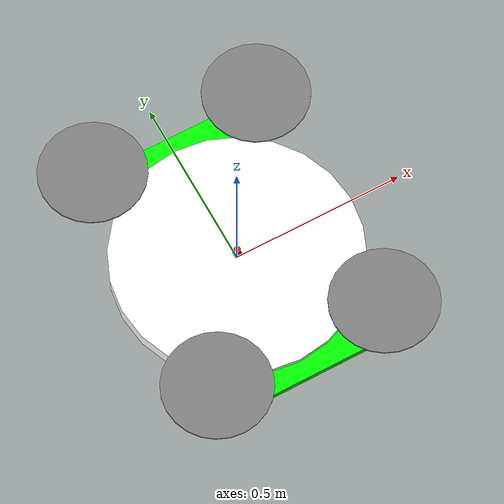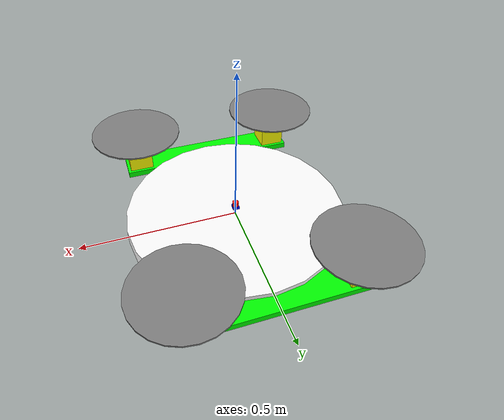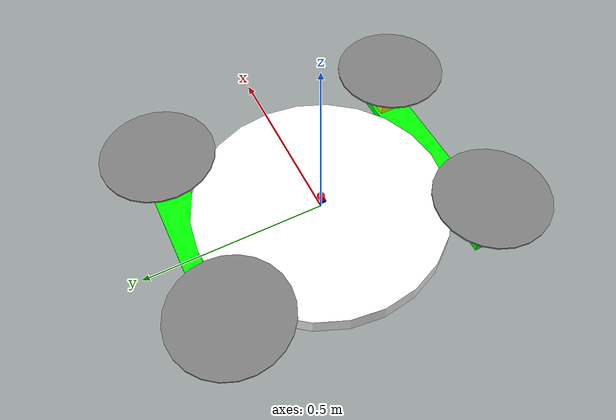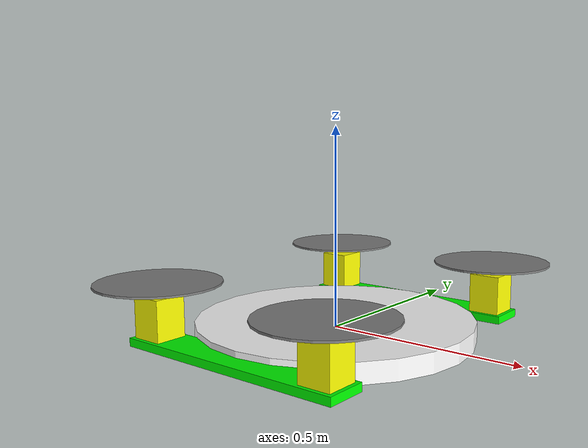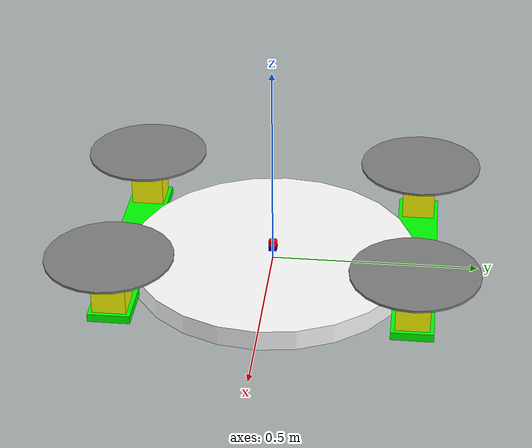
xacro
<?xml version="1.0"?>
<robot name="tilt_drone" xmlns:xacro="http://www.ros.org/wiki/xacro">

  <!-- Include all property and macro files -->
  <xacro:include filename="properties.xacro"/>
  <xacro:include filename="macros.xacro"/>
  <xacro:include filename="sensors.xacro"/>
  <xacro:include filename="gazebo.xacro"/>

  <!-- Main Body (Base Link) -->
  <link name="base_link">
    <visual>
      <origin xyz="0 0 0" rpy="0 0 0"/>
      <geometry>
        <cylinder radius="${body_radius}" length="${body_length}"/>
      </geometry>
      <material name="white"/>
    </visual>
    <collision>
      <origin xyz="0 0 0" rpy="0 0 0"/>
      <geometry>
        <cylinder radius="${body_radius}" length="${body_length}"/>
      </geometry>
    </collision>
    <inertial>
      <mass value="${body_mass}"/>
      <origin xyz="0 0 0" rpy="0 0 0"/>
      <inertia ixx="${body_ixx}" ixy="0" ixz="0" iyy="${body_iyy}" iyz="0" izz="${body_izz}"/>
    </inertial>
  </link>

  <!-- Left Wing Assembly -->
  <xacro:wing prefix="left" reflect="1"/>

  <!-- Right Wing Assembly -->
  <xacro:wing prefix="right" reflect="-1"/>

  <!-- Left Front Motor Assembly -->
  <xacro:motor_assembly prefix="left_front" wing_prefix="left" x_pos="${front_motor_x}"/>

  <!-- Left Rear Motor Assembly -->
  <xacro:motor_assembly prefix="left_rear" wing_prefix="left" x_pos="${rear_motor_x}"/>

  <!-- Right Front Motor Assembly -->
  <xacro:motor_assembly prefix="right_front" wing_prefix="right" x_pos="${front_motor_x}"/>

  <!-- Right Rear Motor Assembly -->
  <xacro:motor_assembly prefix="right_rear" wing_prefix="right" x_pos="${rear_motor_x}"/>

  <!-- Sensors -->
  <xacro:imu_sensor parent_link="base_link"/>
  <xacro:gps_sensor parent_link="base_link"/>
  <xacro:barometer_sensor parent_link="base_link"/>
  <xacro:magnetometer_sensor parent_link="imu_link"/>

</robot>

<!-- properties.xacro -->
<robot xmlns:xacro="http://www.ros.org/wiki/xacro">

  <!-- Main Body Properties -->
  <xacro:property name="body_radius" value="0.35"/>
  <xacro:property name="body_length" value="0.05"/>
  <xacro:property name="body_mass" value="2.0"/>
  <xacro:property name="body_ixx" value="0.1"/>
  <xacro:property name="body_iyy" value="0.1"/>
  <xacro:property name="body_izz" value="0.05"/>

  <!-- Wing Properties -->
  <xacro:property name="wing_length" value="0.6"/>
  <xacro:property name="wing_width" value="0.1"/>
  <xacro:property name="wing_height" value="0.02"/>
  <xacro:property name="wing_mass" value="0.5"/>
  <xacro:property name="wing_offset_y" value="0.35"/>
  <xacro:property name="wing_ixx" value="0.01"/>
  <xacro:property name="wing_iyy" value="0.05"/>
  <xacro:property name="wing_izz" value="0.05"/>

  <!-- Motor Properties -->
  <xacro:property name="motor_width" value="0.08"/>
  <xacro:property name="motor_depth" value="0.08"/>
  <xacro:property name="motor_height" value="0.1"/>
  <xacro:property name="motor_mass" value="0.3"/>
  <xacro:property name="motor_z_offset" value="0.06"/>
  <xacro:property name="motor_ixx" value="0.01"/>
  <xacro:property name="motor_iyy" value="0.01"/>
  <xacro:property name="motor_izz" value="0.01"/>

  <!-- Motor Positions -->
  <xacro:property name="front_motor_x" value="0.25"/>
  <xacro:property name="rear_motor_x" value="-0.25"/>

  <!-- Tilt Joint Properties -->
  <xacro:property name="tilt_limit_lower" value="-1.57"/>
  <xacro:property name="tilt_limit_upper" value="1.57"/>
  <xacro:property name="tilt_effort" value="10"/>
  <xacro:property name="tilt_velocity" value="2"/>

  <!-- Propeller Properties -->
  <xacro:property name="prop_radius" value="0.15"/>
  <xacro:property name="prop_thickness" value="0.005"/>
  <xacro:property name="prop_mass" value="0.05"/>
  <xacro:property name="prop_z_offset" value="0.08"/>
  <xacro:property name="prop_ixx" value="0.001"/>
  <xacro:property name="prop_iyy" value="0.001"/>
  <xacro:property name="prop_izz" value="0.001"/>

  <!-- Sensor Mounting Positions -->
  <xacro:property name="imu_x" value="0"/>
  <xacro:property name="imu_y" value="0"/>
  <xacro:property name="imu_z" value="0.03"/>

  <xacro:property name="gps_x" value="0"/>
  <xacro:property name="gps_y" value="0"/>
  <xacro:property name="gps_z" value="0.04"/>

  <!-- Material Definitions -->
  <material name="white">
    <color rgba="1 1 1 1"/>
  </material>

  <material name="green">
    <color rgba="0 1 0 1"/>
  </material>

  <material name="yellow">
    <color rgba="1 1 0 1"/>
  </material>

  <material name="gray">
    <color rgba="0.5 0.5 0.5 1"/>
  </material>

  <material name="red">
    <color rgba="1 0 0 1"/>
  </material>

  <material name="blue">
    <color rgba="0 0 1 1"/>
  </material>

</robot>

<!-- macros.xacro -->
<robot xmlns:xacro="http://www.ros.org/wiki/xacro">

  <!-- Wing Macro -->
  <xacro:macro name="wing" params="prefix reflect">
    <link name="${prefix}_wing">
      <visual>
        <origin xyz="0 0 0" rpy="0 0 0"/>
        <geometry>
          <box size="${wing_length} ${wing_width} ${wing_height}"/>
        </geometry>
        <material name="green">
          <color rgba="0 1 0 1"/>
        </material>
      </visual>
      <collision>
        <origin xyz="0 0 0" rpy="0 0 0"/>
        <geometry>
          <box size="${wing_length} ${wing_width} ${wing_height}"/>
        </geometry>
      </collision>
      <inertial>
        <mass value="${wing_mass}"/>
        <origin xyz="0 0 0" rpy="0 0 0"/>
        <inertia ixx="${wing_ixx}" ixy="0" ixz="0" iyy="${wing_iyy}" iyz="0" izz="${wing_izz}"/>
      </inertial>
    </link>

    <joint name="${prefix}_wing_joint" type="fixed">
      <parent link="base_link"/>
      <child link="${prefix}_wing"/>
      <origin xyz="0 ${reflect * wing_offset_y} 0" rpy="0 0 0"/>
    </joint>
  </xacro:macro>

  <!-- Tilt Motor Macro -->
  <xacro:macro name="tilt_motor" params="prefix wing_prefix x_pos">
    <link name="${prefix}_motor">
      <visual>
        <origin xyz="0 0 0" rpy="0 0 0"/>
        <geometry>
          <box size="${motor_width} ${motor_depth} ${motor_height}"/>
        </geometry>
        <material name="yellow">
          <color rgba="1 1 0 1"/>
        </material>
      </visual>
      <collision>
        <origin xyz="0 0 0" rpy="0 0 0"/>
        <geometry>
          <box size="${motor_width} ${motor_depth} ${motor_height}"/>
        </geometry>
      </collision>
      <inertial>
        <mass value="${motor_mass}"/>
        <origin xyz="0 0 0" rpy="0 0 0"/>
        <inertia ixx="${motor_ixx}" ixy="0" ixz="0" iyy="${motor_iyy}" iyz="0" izz="${motor_izz}"/>
      </inertial>
    </link>

    <joint name="${prefix}_tilt_joint" type="revolute">
      <parent link="${wing_prefix}_wing"/>
      <child link="${prefix}_motor"/>
      <origin xyz="${x_pos} 0 ${motor_z_offset}" rpy="0 0 0"/>
      <axis xyz="0 1 0"/>
      <limit lower="${tilt_limit_lower}" upper="${tilt_limit_upper}" effort="${tilt_effort}" velocity="${tilt_velocity}"/>
    </joint>
  </xacro:macro>

  <!-- Propeller Macro -->
  <xacro:macro name="propeller" params="prefix motor_prefix">
    <link name="${prefix}_prop">
      <visual>
        <origin xyz="0 0 0" rpy="0 0 0"/>
        <geometry>
          <cylinder radius="${prop_radius}" length="${prop_thickness}"/>
        </geometry>
        <material name="gray">
          <color rgba="0.5 0.5 0.5 1"/>
        </material>
      </visual>
      <inertial>
        <mass value="${prop_mass}"/>
        <origin xyz="0 0 0" rpy="0 0 0"/>
        <inertia ixx="${prop_ixx}" ixy="0" ixz="0" iyy="${prop_iyy}" iyz="0" izz="${prop_izz}"/>
      </inertial>
    </link>

    <joint name="${prefix}_prop_joint" type="continuous">
      <parent link="${motor_prefix}_motor"/>
      <child link="${prefix}_prop"/>
      <origin xyz="0 0 ${prop_z_offset}" rpy="0 0 0"/>
      <axis xyz="0 0 1"/>
    </joint>
  </xacro:macro>

  <!-- Complete Motor Assembly Macro -->
  <xacro:macro name="motor_assembly" params="prefix wing_prefix x_pos">
    <xacro:tilt_motor prefix="${prefix}" wing_prefix="${wing_prefix}" x_pos="${x_pos}"/>
    <xacro:propeller prefix="${prefix}" motor_prefix="${prefix}"/>
  </xacro:macro>

</robot>

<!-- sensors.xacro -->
<robot xmlns:xacro="http://www.ros.org/wiki/xacro">

  <!-- IMU Sensor -->
  <xacro:macro name="imu_sensor" params="parent_link">
    <link name="imu_link">
      <visual>
        <origin xyz="0 0 0" rpy="0 0 0"/>
        <geometry>
          <box size="0.02 0.02 0.01"/>
        </geometry>
        <material name="blue"/>
      </visual>
      <inertial>
        <mass value="0.01"/>
        <origin xyz="0 0 0" rpy="0 0 0"/>
        <inertia ixx="0.0001" ixy="0" ixz="0" iyy="0.0001" iyz="0" izz="0.0001"/>
      </inertial>
    </link>

    <joint name="imu_joint" type="fixed">
      <parent link="${parent_link}"/>
      <child link="imu_link"/>
      <origin xyz="${imu_x} ${imu_y} ${imu_z}" rpy="0 0 0"/>
    </joint>

    <gazebo reference="imu_link">
      <sensor name="imu_sensor" type="imu">
        <always_on>1</always_on>
        <update_rate>1000</update_rate>
        <visualize>true</visualize>
        <imu>
          <angular_velocity>
            <x>
              <noise type="gaussian">
                <mean>0.0</mean>
                <stddev>2e-4</stddev>
              </noise>
            </x>
            <y>
              <noise type="gaussian">
                <mean>0.0</mean>
                <stddev>2e-4</stddev>
              </noise>
            </y>
            <z>
              <noise type="gaussian">
                <mean>0.0</mean>
                <stddev>2e-4</stddev>
              </noise>
            </z>
          </angular_velocity>
          <linear_acceleration>
            <x>
              <noise type="gaussian">
                <mean>0.0</mean>
                <stddev>1.7e-2</stddev>
              </noise>
            </x>
            <y>
              <noise type="gaussian">
                <mean>0.0</mean>
                <stddev>1.7e-2</stddev>
              </noise>
            </y>
            <z>
              <noise type="gaussian">
                <mean>0.0</mean>
                <stddev>1.7e-2</stddev>
              </noise>
            </z>
          </linear_acceleration>
        </imu>
        <plugin name="imu_plugin" filename="libgazebo_ros_imu_sensor.so">
          <ros>
            <namespace>/tilt_drone</namespace>
            <remapping>~/out:=imu</remapping>
          </ros>
          <initial_orientation_as_reference>false</initial_orientation_as_reference>
        </plugin>
      </sensor>
    </gazebo>
  </xacro:macro>

  <!-- GPS Sensor -->
  <xacro:macro name="gps_sensor" params="parent_link">
    <link name="gps_link">
      <visual>
        <origin xyz="0 0 0" rpy="0 0 0"/>
        <geometry>
          <cylinder radius="0.01" length="0.02"/>
        </geometry>
        <material name="red"/>
      </visual>
      <inertial>
        <mass value="0.005"/>
        <origin xyz="0 0 0" rpy="0 0 0"/>
        <inertia ixx="0.0001" ixy="0" ixz="0" iyy="0.0001" iyz="0" izz="0.0001"/>
      </inertial>
    </link>

    <joint name="gps_joint" type="fixed">
      <parent link="${parent_link}"/>
      <child link="gps_link"/>
      <origin xyz="${gps_x} ${gps_y} ${gps_z}" rpy="0 0 0"/>
    </joint>

    <gazebo reference="gps_link">
      <sensor name="gps_sensor" type="gps">
        <always_on>true</always_on>
        <update_rate>10</update_rate>
        <gps>
          <position_sensing>
            <horizontal>
              <noise type="gaussian">
                <mean>0.0</mean>
                <stddev>2e-4</stddev>
              </noise>
            </horizontal>
            <vertical>
              <noise type="gaussian">
                <mean>0.0</mean>
                <stddev>2e-4</stddev>
              </noise>
            </vertical>
          </position_sensing>
        </gps>
        <plugin name="gps_plugin" filename="libgazebo_ros_gps_sensor.so">
          <ros>
            <namespace>/tilt_drone</namespace>
            <remapping>~/out:=gps/fix</remapping>
          </ros>
        </plugin>
      </sensor>
    </gazebo>
  </xacro:macro>

  <!-- Barometer/Altitude Sensor -->
  <xacro:macro name="barometer_sensor" params="parent_link">
    <gazebo reference="${parent_link}">
      <sensor name="air_pressure" type="air_pressure">
        <always_on>true</always_on>
        <update_rate>20</update_rate>
        <air_pressure>
          <reference_altitude>0</reference_altitude>
          <noise type="gaussian">
            <mean>0.0</mean>
            <stddev>0.1</stddev>
          </noise>
        </air_pressure>
        <plugin name="barometer_plugin" filename="libgazebo_ros_air_pressure.so">
          <ros>
            <namespace>/tilt_drone</namespace>
            <remapping>~/out:=air_pressure</remapping>
          </ros>
        </plugin>
      </sensor>
    </gazebo>
  </xacro:macro>

  <!-- Magnetometer Sensor -->
  <xacro:macro name="magnetometer_sensor" params="parent_link">
    <gazebo reference="${parent_link}">
      <sensor name="magnetometer" type="magnetometer">
        <always_on>true</always_on>
        <update_rate>100</update_rate>
        <magnetometer>
          <x>
            <noise type="gaussian">
              <mean>0.0</mean>
              <stddev>0.0001</stddev>
            </noise>
          </x>
          <y>
            <noise type="gaussian">
              <mean>0.0</mean>
              <stddev>0.0001</stddev>
            </noise>
          </y>
          <z>
            <noise type="gaussian">
              <mean>0.0</mean>
              <stddev>0.0001</stddev>
            </noise>
          </z>
        </magnetometer>
        <plugin name="magnetometer_plugin" filename="libgazebo_ros_magnetometer.so">
          <ros>
            <namespace>/tilt_drone</namespace>
            <remapping>~/out:=magnetic_field</remapping>
          </ros>
        </plugin>
      </sensor>
    </gazebo>
  </xacro:macro>

  <!-- Motor Plugin for ArduPilot -->
  <xacro:macro name="motor_plugin" params="motor_number joint_name direction">
    <gazebo reference="${joint_name}">
      <plugin name="motor_${motor_number}" filename="libArduPilotPlugin.so">
        <robotNamespace>/tilt_drone</robotNamespace>
        <jointName>${joint_name}</jointName>
        <motorNumber>${motor_number}</motorNumber>
        <motorSpeed>838</motorSpeed>
        <direction>${direction}</direction>
        <motorType>rotor</motorType>
        <cmdTimeout>5</cmdTimeout>
        <motorFailureNum>0</motorFailureNum>
      </plugin>
    </gazebo>
  </xacro:macro>

  <!-- Servo Plugin for Tilt Mechanism -->
  <xacro:macro name="servo_plugin" params="servo_number joint_name">
    <gazebo reference="${joint_name}">
      <plugin name="servo_${servo_number}" filename="libArduPilotPlugin.so">
        <robotNamespace>/tilt_drone</robotNamespace>
        <jointName>${joint_name}</jointName>
        <servoNumber>${servo_number}</servoNumber>
        <direction>1</direction>
        <motorType>servo</motorType>
        <cmdTimeout>5</cmdTimeout>
      </plugin>
    </gazebo>
  </xacro:macro>

</robot>
